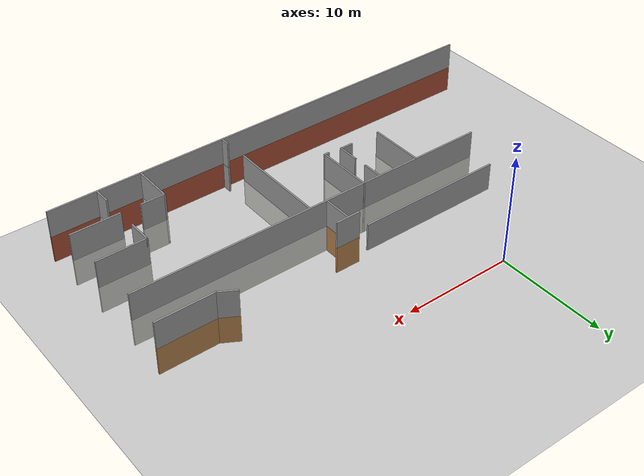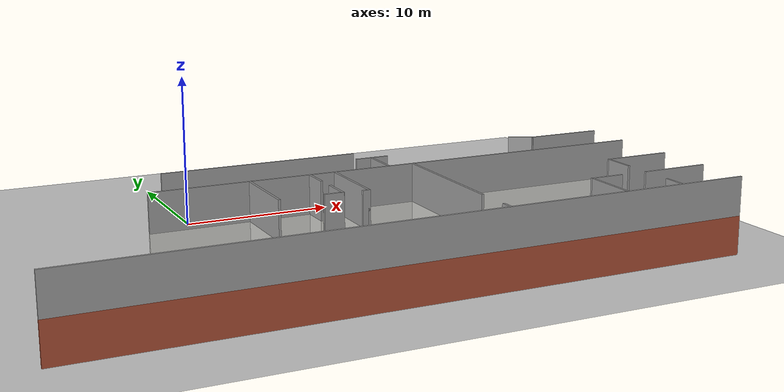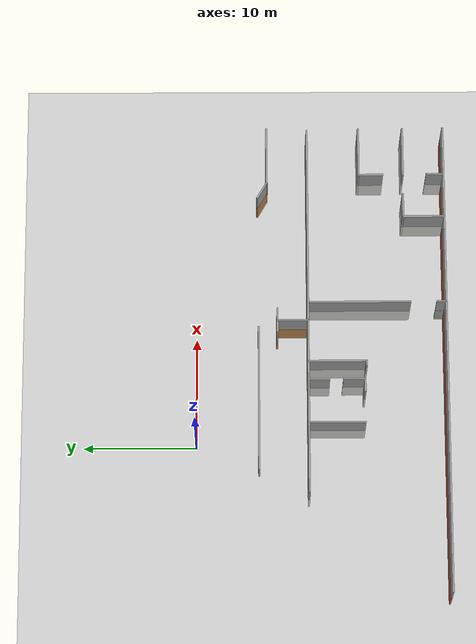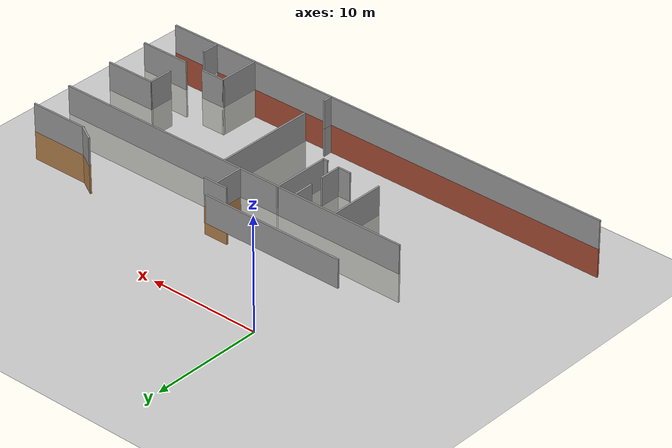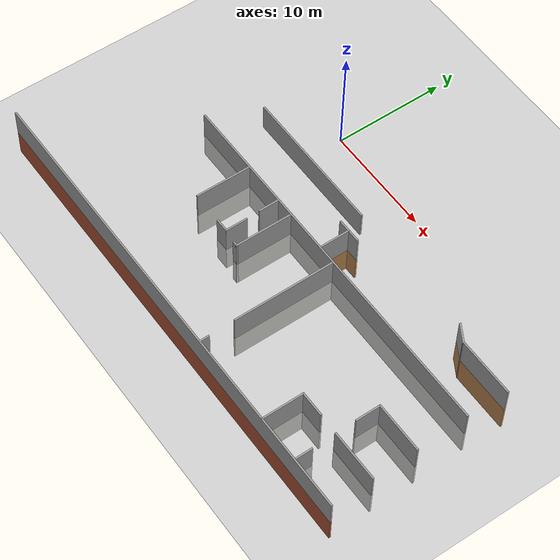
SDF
<sdf version="1.7">
 <world name="default">
  <model name="ground_plane">
   <static>1</static>
   <link name="link">
    <collision name="collision">
     <geometry><plane><normal>0 0 1</normal><size>100 100</size></plane></geometry>
     <surface><friction><ode><mu>100</mu><mu2>50</mu2></ode></friction></surface>
    </collision>
    <visual name="visual">
     <cast_shadows>0</cast_shadows>
     <geometry><plane><normal>0 0 1</normal><size>100 100</size></plane></geometry>
     <material>
      <script><uri>file://media/materials/scripts/gazebo.material</uri><name>Gazebo/Grey</name></script>
     </material>
    </visual>
   </link>
  </model>
  <model name="AKW_0">
   <pose>0.482897 -0.466564 0 0 -0 0</pose>
   <link name="Wall_0">
    <collision name="Wall_0_Collision">
     <geometry><box><size>42.5 0.15 2.5</size></box></geometry>
     <pose>0 0 1.25 0 -0 0</pose>
    </collision>
    <visual name="Wall_0_Visual">
     <pose>0 0 1.25 0 -0 0</pose>
     <geometry><box><size>42.5 0.15 2.5</size></box></geometry>
     <material>
      <script><uri>file://media/materials/scripts/gazebo.material</uri><name>Gazebo/Bricks</name></script>
      <ambient>1 1 1 1</ambient>
     </material>
     <meta><layer>0</layer></meta>
    </visual>
    <pose>6.68165 -21.5475 0 0 -0 0</pose>
   </link>
   <link name="Wall_10">
    <collision name="Wall_10_Collision">
     <geometry><box><size>33.5 0.15 2.5</size></box></geometry>
     <pose>0 0 1.25 0 -0 0</pose>
    </collision>
    <visual name="Wall_10_Visual">
     <pose>0 0 1.25 0 -0 0</pose>
     <geometry><box><size>33.5 0.15 2.5</size></box></geometry>
     <material>
      <script><uri>file://media/materials/scripts/gazebo.material</uri><name>Gazebo/CeilingTiled</name></script>
      <ambient>1 1 1 1</ambient>
     </material>
     <meta><layer>0</layer></meta>
    </visual>
    <pose>10.9914 -9.37368 0 0 -0 0</pose>
   </link>
   <link name="Wall_223">
    <collision name="Wall_223_Collision">
     <geometry><box><size>42.5 0.15 2.5</size></box></geometry>
     <pose>0 0 1.25 0 -0 0</pose>
    </collision>
    <visual name="Wall_223_Visual">
     <pose>0 0 1.25 0 -0 0</pose>
     <geometry><box><size>42.5 0.15 2.5</size></box></geometry>
     <material>
      <script><uri>file://media/materials/scripts/gazebo.material</uri><name>Gazebo/Grey</name></script>
      <ambient>1 1 1 1</ambient>
     </material>
     <meta><layer>1</layer></meta>
    </visual>
    <pose>6.68165 -21.5475 2.5 0 -0 0</pose>
   </link>
   <link name="Wall_230">
    <collision name="Wall_230_Collision">
     <geometry><box><size>33.5 0.15 2.5</size></box></geometry>
     <pose>0 0 1.25 0 -0 0</pose>
    </collision>
    <visual name="Wall_230_Visual">
     <pose>0 0 1.25 0 -0 0</pose>
     <geometry><box><size>33.5 0.15 2.5</size></box></geometry>
     <material>
      <script><uri>file://media/materials/scripts/gazebo.material</uri><name>Gazebo/Grey</name></script>
      <ambient>1 1 1 1</ambient>
     </material>
     <meta><layer>1</layer></meta>
    </visual>
    <pose>10.9914 -9.37368 2.5 0 -0 0</pose>
   </link>
   <link name="Wall_259">
    <collision name="Wall_259_Collision">
     <geometry><box><size>5 0.15 2.5</size></box></geometry>
     <pose>0 0 1.25 0 -0 0</pose>
    </collision>
    <visual name="Wall_259_Visual">
     <pose>0 0 1.25 0 -0 0</pose>
     <geometry><box><size>5 0.15 2.5</size></box></geometry>
     <material>
      <script><uri>file://media/materials/scripts/gazebo.material</uri><name>Gazebo/Grey</name></script>
      <ambient>1 1 1 1</ambient>
     </material>
     <meta><layer>1</layer></meta>
    </visual>
    <pose>0.528902 -11.8401 2.5 0 -0 1.5708</pose>
   </link>
   <link name="Wall_260">
    <collision name="Wall_260_Collision">
     <geometry><box><size>5.25 0.15 2.5</size></box></geometry>
     <pose>0 0 1.25 0 -0 0</pose>
    </collision>
    <visual name="Wall_260_Visual">
     <pose>0 0 1.25 0 -0 0</pose>
     <geometry><box><size>5.25 0.15 2.5</size></box></geometry>
     <material>
      <script><uri>file://media/materials/scripts/gazebo.material</uri><name>Gazebo/Grey</name></script>
      <ambient>1 1 1 1</ambient>
     </material>
     <meta><layer>1</layer></meta>
    </visual>
    <pose>6.09295 -11.9056 2.5 0 -0 -1.5708</pose>
   </link>
   <link name="Wall_261">
    <collision name="Wall_261_Collision">
     <geometry><box><size>0.5 0.15 2.5</size></box></geometry>
     <pose>0 0 1.25 0 -0 0</pose>
    </collision>
    <visual name="Wall_261_Visual">
     <pose>0 0 1.25 0 -0 0</pose>
     <geometry><box><size>0.5 0.15 2.5</size></box></geometry>
     <material>
      <script><uri>file://media/materials/scripts/gazebo.material</uri><name>Gazebo/Grey</name></script>
      <ambient>1 1 1 1</ambient>
     </material>
     <meta><layer>1</layer></meta>
    </visual>
    <pose>5.91795 -14.4556 2.5 0 -0 3.14159</pose>
   </link>
   <link name="Wall_262">
    <collision name="Wall_262_Collision">
     <geometry><box><size>1.25 0.15 2.5</size></box></geometry>
     <pose>0 0 1.25 0 -0 0</pose>
    </collision>
    <visual name="Wall_262_Visual">
     <pose>0 0 1.25 0 -0 0</pose>
     <geometry><box><size>1.25 0.15 2.5</size></box></geometry>
     <material>
      <script><uri>file://media/materials/scripts/gazebo.material</uri><name>Gazebo/Grey</name></script>
      <ambient>1 1 1 1</ambient>
     </material>
     <meta><layer>1</layer></meta>
    </visual>
    <pose>3.93106 -14.3118 2.5 0 -0 0</pose>
   </link>
   <link name="Wall_263">
    <collision name="Wall_263_Collision">
     <geometry><box><size>2 0.15 2.5</size></box></geometry>
     <pose>0 0 1.25 0 -0 0</pose>
    </collision>
    <visual name="Wall_263_Visual">
     <pose>0 0 1.25 0 -0 0</pose>
     <geometry><box><size>2 0.15 2.5</size></box></geometry>
     <material>
      <script><uri>file://media/materials/scripts/gazebo.material</uri><name>Gazebo/Grey</name></script>
      <ambient>1 1 1 1</ambient>
     </material>
     <meta><layer>1</layer></meta>
    </visual>
    <pose>4.48106 -13.3868 2.5 0 -0 1.5708</pose>
   </link>
   <link name="Wall_264">
    <collision name="Wall_264_Collision">
     <geometry><box><size>1.77612 0.15 2.5</size></box></geometry>
     <pose>0 0 1.25 0 -0 0</pose>
    </collision>
    <visual name="Wall_264_Visual">
     <pose>0 0 1.25 0 -0 0</pose>
     <geometry><box><size>1.77612 0.15 2.5</size></box></geometry>
     <material>
      <script><uri>file://media/materials/scripts/gazebo.material</uri><name>Gazebo/Grey</name></script>
      <ambient>1 1 1 1</ambient>
     </material>
     <meta><layer>1</layer></meta>
    </visual>
    <pose>4.43137 -10.3427 2.5 0 -0 1.5729</pose>
   </link>
   <link name="Wall_265">
    <collision name="Wall_265_Collision">
     <geometry><box><size>9 0.15 2.5</size></box></geometry>
     <pose>0 0 1.25 0 -0 0</pose>
    </collision>
    <visual name="Wall_265_Visual">
     <pose>0 0 1.25 0 -0 0</pose>
     <geometry><box><size>9 0.15 2.5</size></box></geometry>
     <material>
      <script><uri>file://media/materials/scripts/gazebo.material</uri><name>Gazebo/Grey</name></script>
      <ambient>1 1 1 1</ambient>
     </material>
     <meta><layer>1</layer></meta>
    </visual>
    <pose>11.5162 -13.9428 2.5 0 -0 1.5708</pose>
   </link>
   <link name="Wall_266">
    <collision name="Wall_266_Collision">
     <geometry><box><size>4.5 0.15 2.5</size></box></geometry>
     <pose>0 0 1.25 0 -0 0</pose>
    </collision>
    <visual name="Wall_266_Visual">
     <pose>0 0 1.25 0 -0 0</pose>
     <geometry><box><size>4.5 0.15 2.5</size></box></geometry>
     <material>
      <script><uri>file://media/materials/scripts/gazebo.material</uri><name>Gazebo/Grey</name></script>
      <ambient>1 1 1 1</ambient>
     </material>
     <meta><layer>1</layer></meta>
    </visual>
    <pose>25.6163 -13.9816 2.5 0 -0 0</pose>
   </link>
   <link name="Wall_267">
    <collision name="Wall_267_Collision">
     <geometry><box><size>2.25 0.15 2.5</size></box></geometry>
     <pose>0 0 1.25 0 -0 0</pose>
    </collision>
    <visual name="Wall_267_Visual">
     <pose>0 0 1.25 0 -0 0</pose>
     <geometry><box><size>2.25 0.15 2.5</size></box></geometry>
     <material>
      <script><uri>file://media/materials/scripts/gazebo.material</uri><name>Gazebo/Grey</name></script>
      <ambient>1 1 1 1</ambient>
     </material>
     <meta><layer>1</layer></meta>
    </visual>
    <pose>23.4413 -15.0316 2.5 0 -0 -1.5708</pose>
   </link>
   <link name="Wall_268">
    <collision name="Wall_268_Collision">
     <geometry><box><size>2.25 0.15 2.5</size></box></geometry>
     <pose>0 0 1.25 0 -0 0</pose>
    </collision>
    <visual name="Wall_268_Visual">
     <pose>0 0 1.25 0 -0 0</pose>
     <geometry><box><size>2.25 0.15 2.5</size></box></geometry>
     <material>
      <script><uri>file://media/materials/scripts/gazebo.material</uri><name>Gazebo/Grey</name></script>
      <ambient>1 1 1 1</ambient>
     </material>
     <meta><layer>1</layer></meta>
    </visual>
    <pose>20.5437 -17.9018 2.5 0 -0 0</pose>
   </link>
   <link name="Wall_269">
    <collision name="Wall_269_Collision">
     <geometry><box><size>4.5 0.15 2.5</size></box></geometry>
     <pose>0 0 1.25 0 -0 0</pose>
    </collision>
    <visual name="Wall_269_Visual">
     <pose>0 0 1.25 0 -0 0</pose>
     <geometry><box><size>4.5 0.15 2.5</size></box></geometry>
     <material>
      <script><uri>file://media/materials/scripts/gazebo.material</uri><name>Gazebo/Grey</name></script>
      <ambient>1 1 1 1</ambient>
     </material>
     <meta><layer>1</layer></meta>
    </visual>
    <pose>25.6437 -17.9292 2.5 0 -0 0</pose>
   </link>
   <link name="Wall_270">
    <collision name="Wall_270_Collision">
     <geometry><box><size>3.75 0.15 2.5</size></box></geometry>
     <pose>0 0 1.25 0 -0 0</pose>
    </collision>
    <visual name="Wall_270_Visual">
     <pose>0 0 1.25 0 -0 0</pose>
     <geometry><box><size>3.75 0.15 2.5</size></box></geometry>
     <material>
      <script><uri>file://media/materials/scripts/gazebo.material</uri><name>Gazebo/Grey</name></script>
      <ambient>1 1 1 1</ambient>
     </material>
     <meta><layer>1</layer></meta>
    </visual>
    <pose>19.4937 -19.7018 2.5 0 -0 -1.5708</pose>
   </link>
   <link name="Wall_271">
    <collision name="Wall_271_Collision">
     <geometry><box><size>1.5 0.15 2.5</size></box></geometry>
     <pose>0 0 1.25 0 -0 0</pose>
    </collision>
    <visual name="Wall_271_Visual">
     <pose>0 0 1.25 0 -0 0</pose>
     <geometry><box><size>1.5 0.15 2.5</size></box></geometry>
     <material>
      <script><uri>file://media/materials/scripts/gazebo.material</uri><name>Gazebo/Grey</name></script>
      <ambient>1 1 1 1</ambient>
     </material>
     <meta><layer>1</layer></meta>
    </visual>
    <pose>23.4861 -20.7407 2.5 0 -0 -1.5708</pose>
   </link>
   <link name="Wall_272">
    <collision name="Wall_272_Collision">
     <geometry><box><size>0.918949 0.15 2.5</size></box></geometry>
     <pose>0 0 1.25 0 -0 0</pose>
    </collision>
    <visual name="Wall_272_Visual">
     <pose>0 0 1.25 0 -0 0</pose>
     <geometry><box><size>0.918949 0.15 2.5</size></box></geometry>
     <material>
      <script><uri>file://media/materials/scripts/gazebo.material</uri><name>Gazebo/Grey</name></script>
      <ambient>1 1 1 1</ambient>
     </material>
     <meta><layer>1</layer></meta>
    </visual>
    <pose>11.5709 -21.1582 2.5 0 -0 -1.56635</pose>
   </link>
   <link name="Wall_275">
    <collision name="Wall_275_Collision">
     <geometry><box><size>13 0.15 2.5</size></box></geometry>
     <pose>0 0 1.25 0 -0 0</pose>
    </collision>
    <visual name="Wall_275_Visual">
     <pose>0 0 1.25 0 -0 0</pose>
     <geometry><box><size>13 0.15 2.5</size></box></geometry>
     <material>
      <script><uri>file://media/materials/scripts/gazebo.material</uri><name>Gazebo/Grey</name></script>
      <ambient>1 1 1 1</ambient>
     </material>
     <meta><layer>1</layer></meta>
    </visual>
    <pose>2.79603 -5.0259 2.5 0 -0 0</pose>
   </link>
   <link name="Wall_277">
    <collision name="Wall_277_Collision">
     <geometry><box><size>1.75 0.15 2.5</size></box></geometry>
     <pose>0 0 1.25 0 -0 0</pose>
    </collision>
    <visual name="Wall_277_Visual">
     <pose>0 0 1.25 0 -0 0</pose>
     <geometry><box><size>1.75 0.15 2.5</size></box></geometry>
     <material>
      <script><uri>file://media/materials/scripts/gazebo.material</uri><name>Gazebo/Grey</name></script>
      <ambient>1 1 1 1</ambient>
     </material>
     <meta><layer>1</layer></meta>
    </visual>
    <pose>21.9961 -5.36222 2.5 0 -0 -0.523599</pose>
   </link>
   <link name="Wall_278">
    <collision name="Wall_278_Collision">
     <geometry><box><size>5.25 0.15 2.5</size></box></geometry>
     <pose>0 0 1.25 0 -0 0</pose>
    </collision>
    <visual name="Wall_278_Visual">
     <pose>0 0 1.25 0 -0 0</pose>
     <geometry><box><size>5.25 0.15 2.5</size></box></geometry>
     <material>
      <script><uri>file://media/materials/scripts/gazebo.material</uri><name>Gazebo/Grey</name></script>
      <ambient>1 1 1 1</ambient>
     </material>
     <meta><layer>1</layer></meta>
    </visual>
    <pose>25.239 -5.76222 2.5 0 -0 0</pose>
   </link>
   <link name="Wall_279">
    <collision name="Wall_279_Collision">
     <geometry><box><size>2.25 0.15 2.5</size></box></geometry>
     <pose>0 0 1.25 0 -0 0</pose>
    </collision>
    <visual name="Wall_279_Visual">
     <pose>0 0 1.25 0 -0 0</pose>
     <geometry><box><size>2.25 0.15 2.5</size></box></geometry>
     <material>
      <script><uri>file://media/materials/scripts/gazebo.material</uri><name>Gazebo/Grey</name></script>
      <ambient>1 1 1 1</ambient>
     </material>
     <meta><layer>1</layer></meta>
    </visual>
    <pose>9.88226 -6.67778 2.5 0 -0 0</pose>
   </link>
   <link name="Wall_280">
    <collision name="Wall_280_Collision">
     <geometry><box><size>2.75 0.15 2.5</size></box></geometry>
     <pose>0 0 1.25 0 -0 0</pose>
    </collision>
    <visual name="Wall_280_Visual">
     <pose>0 0 1.25 0 -0 0</pose>
     <geometry><box><size>2.75 0.15 2.5</size></box></geometry>
     <material>
      <script><uri>file://media/materials/scripts/gazebo.material</uri><name>Gazebo/Grey</name></script>
      <ambient>1 1 1 1</ambient>
     </material>
     <meta><layer>1</layer></meta>
    </visual>
    <pose>9.846 -8.04017 2.5 0 -0 -1.5708</pose>
   </link>
   <link name="Wall_58">
    <collision name="Wall_58_Collision">
     <geometry><box><size>5 0.15 2.5</size></box></geometry>
     <pose>0 0 1.25 0 -0 0</pose>
    </collision>
    <visual name="Wall_58_Visual">
     <pose>0 0 1.25 0 -0 0</pose>
     <geometry><box><size>5 0.15 2.5</size></box></geometry>
     <material>
      <script><uri>file://media/materials/scripts/gazebo.material</uri><name>Gazebo/CeilingTiled</name></script>
      <ambient>1 1 1 1</ambient>
     </material>
     <meta><layer>0</layer></meta>
    </visual>
    <pose>0.528902 -11.8401 0 0 -0 1.5708</pose>
   </link>
   <link name="Wall_60">
    <collision name="Wall_60_Collision">
     <geometry><box><size>5.25 0.15 2.5</size></box></geometry>
     <pose>0 0 1.25 0 -0 0</pose>
    </collision>
    <visual name="Wall_60_Visual">
     <pose>0 0 1.25 0 -0 0</pose>
     <geometry><box><size>5.25 0.15 2.5</size></box></geometry>
     <material>
      <script><uri>file://media/materials/scripts/gazebo.material</uri><name>Gazebo/CeilingTiled</name></script>
      <ambient>1 1 1 1</ambient>
     </material>
     <meta><layer>0</layer></meta>
    </visual>
    <pose>6.09295 -11.9056 0 0 -0 -1.5708</pose>
   </link>
   <link name="Wall_61">
    <collision name="Wall_61_Collision">
     <geometry><box><size>0.5 0.15 2.5</size></box></geometry>
     <pose>0 0 1.25 0 -0 0</pose>
    </collision>
    <visual name="Wall_61_Visual">
     <pose>0 0 1.25 0 -0 0</pose>
     <geometry><box><size>0.5 0.15 2.5</size></box></geometry>
     <material>
      <script><uri>file://media/materials/scripts/gazebo.material</uri><name>Gazebo/CeilingTiled</name></script>
      <ambient>1 1 1 1</ambient>
     </material>
     <meta><layer>0</layer></meta>
    </visual>
    <pose>5.91795 -14.4556 0 0 -0 3.14159</pose>
   </link>
   <link name="Wall_63">
    <collision name="Wall_63_Collision">
     <geometry><box><size>1.25 0.15 2.5</size></box></geometry>
     <pose>0 0 1.25 0 -0 0</pose>
    </collision>
    <visual name="Wall_63_Visual">
     <pose>0 0 1.25 0 -0 0</pose>
     <geometry><box><size>1.25 0.15 2.5</size></box></geometry>
     <material>
      <script><uri>file://media/materials/scripts/gazebo.material</uri><name>Gazebo/CeilingTiled</name></script>
      <ambient>1 1 1 1</ambient>
     </material>
     <meta><layer>0</layer></meta>
    </visual>
    <pose>3.93106 -14.3118 0 0 -0 0</pose>
   </link>
   <link name="Wall_65">
    <collision name="Wall_65_Collision">
     <geometry><box><size>2 0.15 2.5</size></box></geometry>
     <pose>0 0 1.25 0 -0 0</pose>
    </collision>
    <visual name="Wall_65_Visual">
     <pose>0 0 1.25 0 -0 0</pose>
     <geometry><box><size>2 0.15 2.5</size></box></geometry>
     <material>
      <script><uri>file://media/materials/scripts/gazebo.material</uri><name>Gazebo/CeilingTiled</name></script>
      <ambient>1 1 1 1</ambient>
     </material>
     <meta><layer>0</layer></meta>
    </visual>
    <pose>4.48106 -13.3868 0 0 -0 1.5708</pose>
   </link>
   <link name="Wall_67">
    <collision name="Wall_67_Collision">
     <geometry><box><size>1.77612 0.15 2.5</size></box></geometry>
     <pose>0 0 1.25 0 -0 0</pose>
    </collision>
    <visual name="Wall_67_Visual">
     <pose>0 0 1.25 0 -0 0</pose>
     <geometry><box><size>1.77612 0.15 2.5</size></box></geometry>
     <material>
      <script><uri>file://media/materials/scripts/gazebo.material</uri><name>Gazebo/CeilingTiled</name></script>
      <ambient>1 1 1 1</ambient>
     </material>
     <meta><layer>0</layer></meta>
    </visual>
    <pose>4.43137 -10.3427 0 0 -0 1.5729</pose>
   </link>
   <link name="Wall_69">
    <collision name="Wall_69_Collision">
     <geometry><box><size>9 0.15 2.5</size></box></geometry>
     <pose>0 0 1.25 0 -0 0</pose>
    </collision>
    <visual name="Wall_69_Visual">
     <pose>0 0 1.25 0 -0 0</pose>
     <geometry><box><size>9 0.15 2.5</size></box></geometry>
     <material>
      <script><uri>file://media/materials/scripts/gazebo.material</uri><name>Gazebo/CeilingTiled</name></script>
      <ambient>1 1 1 1</ambient>
     </material>
     <meta><layer>0</layer></meta>
    </visual>
    <pose>11.5162 -13.9428 0 0 -0 1.5708</pose>
   </link>
   <link name="Wall_71">
    <collision name="Wall_71_Collision">
     <geometry><box><size>4.5 0.15 2.5</size></box></geometry>
     <pose>0 0 1.25 0 -0 0</pose>
    </collision>
    <visual name="Wall_71_Visual">
     <pose>0 0 1.25 0 -0 0</pose>
     <geometry><box><size>4.5 0.15 2.5</size></box></geometry>
     <material>
      <script><uri>file://media/materials/scripts/gazebo.material</uri><name>Gazebo/CeilingTiled</name></script>
      <ambient>1 1 1 1</ambient>
     </material>
     <meta><layer>0</layer></meta>
    </visual>
    <pose>25.6163 -13.9816 0 0 -0 0</pose>
   </link>
   <link name="Wall_73">
    <collision name="Wall_73_Collision">
     <geometry><box><size>2.25 0.15 2.5</size></box></geometry>
     <pose>0 0 1.25 0 -0 0</pose>
    </collision>
    <visual name="Wall_73_Visual">
     <pose>0 0 1.25 0 -0 0</pose>
     <geometry><box><size>2.25 0.15 2.5</size></box></geometry>
     <material>
      <script><uri>file://media/materials/scripts/gazebo.material</uri><name>Gazebo/CeilingTiled</name></script>
      <ambient>1 1 1 1</ambient>
     </material>
     <meta><layer>0</layer></meta>
    </visual>
    <pose>23.4413 -15.0316 0 0 -0 -1.5708</pose>
   </link>
   <link name="Wall_75">
    <collision name="Wall_75_Collision">
     <geometry><box><size>2.25 0.15 2.5</size></box></geometry>
     <pose>0 0 1.25 0 -0 0</pose>
    </collision>
    <visual name="Wall_75_Visual">
     <pose>0 0 1.25 0 -0 0</pose>
     <geometry><box><size>2.25 0.15 2.5</size></box></geometry>
     <material>
      <script><uri>file://media/materials/scripts/gazebo.material</uri><name>Gazebo/CeilingTiled</name></script>
      <ambient>1 1 1 1</ambient>
     </material>
     <meta><layer>0</layer></meta>
    </visual>
    <pose>20.5437 -17.9018 0 0 -0 0</pose>
   </link>
   <link name="Wall_78">
    <collision name="Wall_78_Collision">
     <geometry><box><size>4.5 0.15 2.5</size></box></geometry>
     <pose>0 0 1.25 0 -0 0</pose>
    </collision>
    <visual name="Wall_78_Visual">
     <pose>0 0 1.25 0 -0 0</pose>
     <geometry><box><size>4.5 0.15 2.5</size></box></geometry>
     <material>
      <script><uri>file://media/materials/scripts/gazebo.material</uri><name>Gazebo/CeilingTiled</name></script>
      <ambient>1 1 1 1</ambient>
     </material>
     <meta><layer>0</layer></meta>
    </visual>
    <pose>25.6437 -17.9292 0 0 -0 0</pose>
   </link>
   <link name="Wall_80">
    <collision name="Wall_80_Collision">
     <geometry><box><size>3.75 0.15 2.5</size></box></geometry>
     <pose>0 0 1.25 0 -0 0</pose>
    </collision>
    <visual name="Wall_80_Visual">
     <pose>0 0 1.25 0 -0 0</pose>
     <geometry><box><size>3.75 0.15 2.5</size></box></geometry>
     <material>
      <script><uri>file://media/materials/scripts/gazebo.material</uri><name>Gazebo/CeilingTiled</name></script>
      <ambient>1 1 1 1</ambient>
     </material>
     <meta><layer>0</layer></meta>
    </visual>
    <pose>19.4937 -19.7018 0 0 -0 -1.5708</pose>
   </link>
   <link name="Wall_82">
    <collision name="Wall_82_Collision">
     <geometry><box><size>1.5 0.15 2.5</size></box></geometry>
     <pose>0 0 1.25 0 -0 0</pose>
    </collision>
    <visual name="Wall_82_Visual">
     <pose>0 0 1.25 0 -0 0</pose>
     <geometry><box><size>1.5 0.15 2.5</size></box></geometry>
     <material>
      <script><uri>file://media/materials/scripts/gazebo.material</uri><name>Gazebo/CeilingTiled</name></script>
      <ambient>1 1 1 1</ambient>
     </material>
     <meta><layer>0</layer></meta>
    </visual>
    <pose>23.4861 -20.7407 0 0 -0 -1.5708</pose>
   </link>
   <link name="Wall_84">
    <collision name="Wall_84_Collision">
     <geometry><box><size>0.918982 0.15 2.5</size></box></geometry>
     <pose>0 0 1.25 0 -0 0</pose>
    </collision>
    <visual name="Wall_84_Visual">
     <pose>0 0 1.25 0 -0 0</pose>
     <geometry><box><size>0.918982 0.15 2.5</size></box></geometry>
     <material>
      <script><uri>file://media/materials/scripts/gazebo.material</uri><name>Gazebo/Grey</name></script>
      <ambient>1 1 1 1</ambient>
     </material>
     <meta><layer>0</layer></meta>
    </visual>
    <pose>11.5709 -21.1582 0 0 -0 -1.56635</pose>
   </link>
   <link name="Wall_93">
    <collision name="Wall_93_Collision">
     <geometry><box><size>1.75 0.15 2.5</size></box></geometry>
     <pose>0 0 1.25 0 -0 0</pose>
    </collision>
    <visual name="Wall_93_Visual">
     <pose>0 0 1.25 0 -0 0</pose>
     <geometry><box><size>1.75 0.15 2.5</size></box></geometry>
     <material>
      <script><uri>file://media/materials/scripts/gazebo.material</uri><name>Gazebo/Wood</name></script>
      <ambient>1 1 1 1</ambient>
     </material>
     <meta><layer>0</layer></meta>
    </visual>
    <pose>21.9961 -5.36222 0 0 -0 -0.523599</pose>
   </link>
   <link name="Wall_94">
    <collision name="Wall_94_Collision">
     <geometry><box><size>5.25 0.15 2.5</size></box></geometry>
     <pose>0 0 1.25 0 -0 0</pose>
    </collision>
    <visual name="Wall_94_Visual">
     <pose>0 0 1.25 0 -0 0</pose>
     <geometry><box><size>5.25 0.15 2.5</size></box></geometry>
     <material>
      <script><uri>file://media/materials/scripts/gazebo.material</uri><name>Gazebo/Wood</name></script>
      <ambient>1 1 1 1</ambient>
     </material>
     <meta><layer>0</layer></meta>
    </visual>
    <pose>25.239 -5.76222 0 0 -0 0</pose>
   </link>
   <link name="Wall_96">
    <collision name="Wall_96_Collision">
     <geometry><box><size>2.25 0.15 2.5</size></box></geometry>
     <pose>0 0 1.25 0 -0 0</pose>
    </collision>
    <visual name="Wall_96_Visual">
     <pose>0 0 1.25 0 -0 0</pose>
     <geometry><box><size>2.25 0.15 2.5</size></box></geometry>
     <material>
      <script><uri>file://media/materials/scripts/gazebo.material</uri><name>Gazebo/Wood</name></script>
      <ambient>1 1 1 1</ambient>
     </material>
     <meta><layer>0</layer></meta>
    </visual>
    <pose>9.88226 -6.67778 0 0 -0 0</pose>
   </link>
   <link name="Wall_98">
    <collision name="Wall_98_Collision">
     <geometry><box><size>2.75 0.15 2.5</size></box></geometry>
     <pose>0 0 1.25 0 -0 0</pose>
    </collision>
    <visual name="Wall_98_Visual">
     <pose>0 0 1.25 0 -0 0</pose>
     <geometry><box><size>2.75 0.15 2.5</size></box></geometry>
     <material>
      <script><uri>file://media/materials/scripts/gazebo.material</uri><name>Gazebo/Wood</name></script>
      <ambient>1 1 1 1</ambient>
     </material>
     <meta><layer>0</layer></meta>
    </visual>
    <pose>9.846 -8.04017 0 0 -0 -1.5708</pose>
   </link>
   <static>1</static>
  </model>
 </world>
</sdf>
